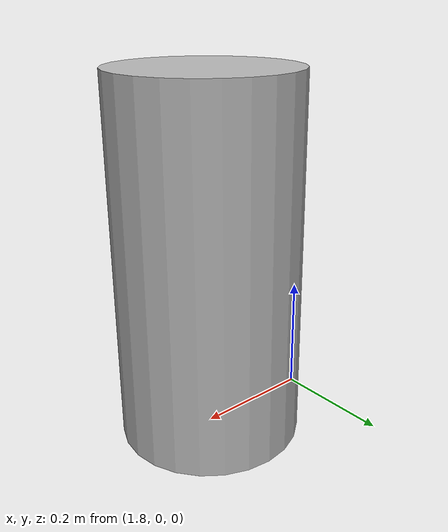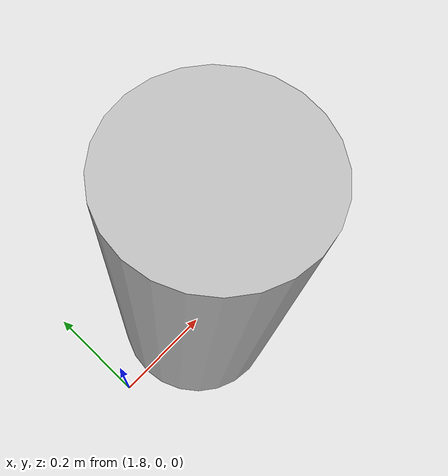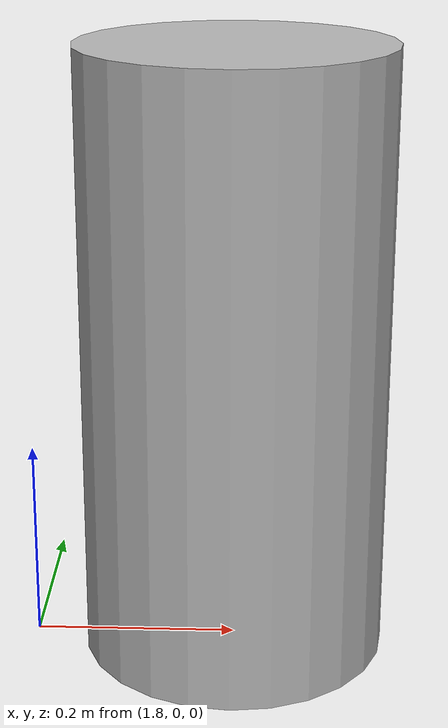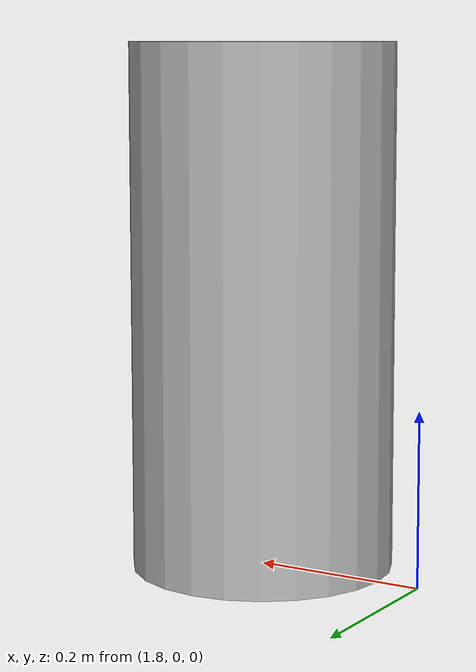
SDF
<sdf version="1.4">
<model name="obs1">
  <pose>2.0 0 0.3 0 0 0</pose>
  <static>true</static>
    <link name="link">
      <inertial>
        <mass>10.0</mass>
        <inertia>
          <ixx>0.083</ixx>
          <ixy>0.0</ixy>
          <ixz>0.0</ixz>
          <iyy>0.083</iyy>
          <iyz>0.0</iyz>
          <izz>0.083</izz>
        </inertia>
      </inertial>
      <collision name="collision">
        <geometry>
          <cylinder>
            <radius>0.15</radius>
	    <length>0.6</length>
          </cylinder>
        </geometry>
      </collision>
      <visual name="visual">
        <geometry>
          <cylinder>
            <radius>0.15</radius>
	    <length>0.6</length>
          </cylinder>
        </geometry>
      </visual>
    </link>
  </model>
</sdf>
